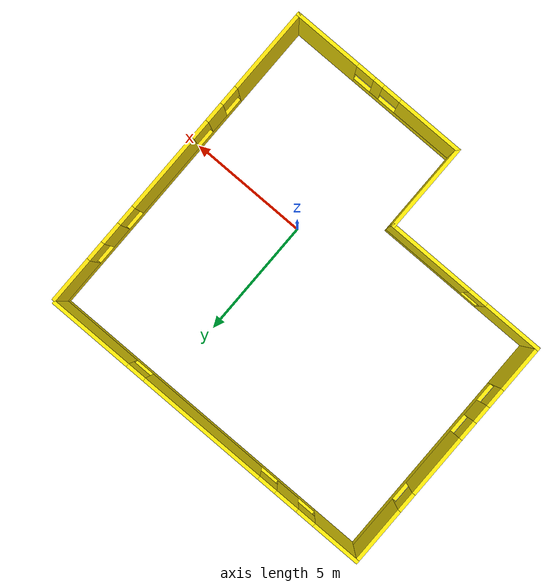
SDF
<?xml version='1.0'?>
<sdf version='1.7'>
  <model name='room'>
    <pose>-2.30056 1.0056 0 0 -0 0</pose>
    <link name='Wall_14'>
      <pose>3.425 -6.85 0 0 -0 3.14159</pose>
      <visual name='Wall_14_Visual_0'>
        <pose>-2.42261 0 1.25 0 -0 0</pose>
        <geometry>
          <box>
            <size>2.90478 0.15 2.5</size>
          </box>
        </geometry>
        <material>
          <script>
            <uri>file://media/materials/scripts/gazebo.material</uri>
            <name>Gazebo/Grey</name>
          </script>
          <ambient>1 0.917647 0.027451 1</ambient>
        </material>
        <meta>
          <layer>0</layer>
        </meta>
      </visual>
      <collision name='Wall_14_Collision_0'>
        <geometry>
          <box>
            <size>2.90478 0.15 2.5</size>
          </box>
        </geometry>
        <pose>-2.42261 0 1.25 0 -0 0</pose>
      </collision>
      <visual name='Wall_14_Visual_1'>
        <pose>1.45239 0 0.25 0 -0 0</pose>
        <geometry>
          <box>
            <size>4.84522 0.15 0.5</size>
          </box>
        </geometry>
        <material>
          <script>
            <uri>file://media/materials/scripts/gazebo.material</uri>
            <name>Gazebo/Grey</name>
          </script>
          <ambient>1 0.917647 0.027451 1</ambient>
        </material>
        <meta>
          <layer>0</layer>
        </meta>
      </visual>
      <collision name='Wall_14_Collision_1'>
        <geometry>
          <box>
            <size>4.84522 0.15 0.5</size>
          </box>
        </geometry>
        <pose>1.45239 0 0.25 0 -0 0</pose>
      </collision>
      <visual name='Wall_14_Visual_2'>
        <pose>0.038129 0 1.5 0 -0 0</pose>
        <geometry>
          <box>
            <size>0.4167 0.15 2</size>
          </box>
        </geometry>
        <material>
          <script>
            <uri>file://media/materials/scripts/gazebo.material</uri>
            <name>Gazebo/Grey</name>
          </script>
          <ambient>1 0.917647 0.027451 1</ambient>
        </material>
        <meta>
          <layer>0</layer>
        </meta>
      </visual>
      <collision name='Wall_14_Collision_2'>
        <geometry>
          <box>
            <size>0.4167 0.15 2</size>
          </box>
        </geometry>
        <pose>0.038129 0 1.5 0 -0 0</pose>
      </collision>
      <visual name='Wall_14_Visual_3'>
        <pose>2.46074 0 1.5 0 -0 0</pose>
        <geometry>
          <box>
            <size>2.82852 0.15 2</size>
          </box>
        </geometry>
        <material>
          <script>
            <uri>file://media/materials/scripts/gazebo.material</uri>
            <name>Gazebo/Grey</name>
          </script>
          <ambient>1 0.917647 0.027451 1</ambient>
        </material>
        <meta>
          <layer>0</layer>
        </meta>
      </visual>
      <collision name='Wall_14_Collision_3'>
        <geometry>
          <box>
            <size>2.82852 0.15 2</size>
          </box>
        </geometry>
        <pose>2.46074 0 1.5 0 -0 0</pose>
      </collision>
      <visual name='Wall_14_Visual_4'>
        <pose>-0.570221 0 1.9 0 -0 0</pose>
        <geometry>
          <box>
            <size>0.8 0.15 1.2</size>
          </box>
        </geometry>
        <material>
          <script>
            <uri>file://media/materials/scripts/gazebo.material</uri>
            <name>Gazebo/Grey</name>
          </script>
          <ambient>1 0.917647 0.027451 1</ambient>
        </material>
        <meta>
          <layer>0</layer>
        </meta>
      </visual>
      <collision name='Wall_14_Collision_4'>
        <geometry>
          <box>
            <size>0.8 0.15 1.2</size>
          </box>
        </geometry>
        <pose>-0.570221 0 1.9 0 -0 0</pose>
      </collision>
      <visual name='Wall_14_Visual_5'>
        <pose>0.646479 0 1.9 0 -0 0</pose>
        <geometry>
          <box>
            <size>0.8 0.15 1.2</size>
          </box>
        </geometry>
        <material>
          <script>
            <uri>file://media/materials/scripts/gazebo.material</uri>
            <name>Gazebo/Grey</name>
          </script>
          <ambient>1 0.917647 0.027451 1</ambient>
        </material>
        <meta>
          <layer>0</layer>
        </meta>
      </visual>
      <collision name='Wall_14_Collision_5'>
        <geometry>
          <box>
            <size>0.8 0.15 1.2</size>
          </box>
        </geometry>
        <pose>0.646479 0 1.9 0 -0 0</pose>
      </collision>
    </link>
    <link name='Wall_15'>
      <collision name='Wall_15_Collision'>
        <geometry>
          <box>
            <size>3.75 0.15 2.5</size>
          </box>
        </geometry>
        <pose>0 0 1.25 0 -0 0</pose>
      </collision>
      <visual name='Wall_15_Visual'>
        <pose>0 0 1.25 0 -0 0</pose>
        <geometry>
          <box>
            <size>3.75 0.15 2.5</size>
          </box>
        </geometry>
        <material>
          <script>
            <uri>file://media/materials/scripts/gazebo.material</uri>
            <name>Gazebo/Grey</name>
          </script>
          <ambient>1 0.917647 0.027451 1</ambient>
        </material>
        <meta>
          <layer>0</layer>
        </meta>
      </visual>
      <pose>-0.375 -5.05 0 0 -0 1.5708</pose>
    </link>
    <link name='Wall_17'>
      <pose>-7.225 1.8 0 0 -0 1.5708</pose>
      <visual name='Wall_17_Visual_0'>
        <pose>-4.10475 0 1.25 0 -0 0</pose>
        <geometry>
          <box>
            <size>2.04049 0.15 2.5</size>
          </box>
        </geometry>
        <material>
          <script>
            <uri>file://media/materials/scripts/gazebo.material</uri>
            <name>Gazebo/Grey</name>
          </script>
          <ambient>1 0.917647 0.027451 1</ambient>
        </material>
        <meta>
          <layer>0</layer>
        </meta>
      </visual>
      <collision name='Wall_17_Collision_0'>
        <geometry>
          <box>
            <size>2.04049 0.15 2.5</size>
          </box>
        </geometry>
        <pose>-4.10475 0 1.25 0 -0 0</pose>
      </collision>
      <visual name='Wall_17_Visual_1'>
        <pose>1.02025 0 0.25 0 -0 0</pose>
        <geometry>
          <box>
            <size>8.20951 0.15 0.5</size>
          </box>
        </geometry>
        <material>
          <script>
            <uri>file://media/materials/scripts/gazebo.material</uri>
            <name>Gazebo/Grey</name>
          </script>
          <ambient>1 0.917647 0.027451 1</ambient>
        </material>
        <meta>
          <layer>0</layer>
        </meta>
      </visual>
      <collision name='Wall_17_Collision_1'>
        <geometry>
          <box>
            <size>8.20951 0.15 0.5</size>
          </box>
        </geometry>
        <pose>1.02025 0 0.25 0 -0 0</pose>
      </collision>
      <visual name='Wall_17_Visual_2'>
        <pose>-1.91393 0 1.5 0 -0 0</pose>
        <geometry>
          <box>
            <size>0.741153 0.15 2</size>
          </box>
        </geometry>
        <material>
          <script>
            <uri>file://media/materials/scripts/gazebo.material</uri>
            <name>Gazebo/Grey</name>
          </script>
          <ambient>1 0.917647 0.027451 1</ambient>
        </material>
        <meta>
          <layer>0</layer>
        </meta>
      </visual>
      <collision name='Wall_17_Collision_2'>
        <geometry>
          <box>
            <size>0.741153 0.15 2</size>
          </box>
        </geometry>
        <pose>-1.91393 0 1.5 0 -0 0</pose>
      </collision>
      <visual name='Wall_17_Visual_3'>
        <pose>0.560023 0 1.5 0 -0 0</pose>
        <geometry>
          <box>
            <size>2.60676 0.15 2</size>
          </box>
        </geometry>
        <material>
          <script>
            <uri>file://media/materials/scripts/gazebo.material</uri>
            <name>Gazebo/Grey</name>
          </script>
          <ambient>1 0.917647 0.027451 1</ambient>
        </material>
        <meta>
          <layer>0</layer>
        </meta>
      </visual>
      <collision name='Wall_17_Collision_3'>
        <geometry>
          <box>
            <size>2.60676 0.15 2</size>
          </box>
        </geometry>
        <pose>0.560023 0 1.5 0 -0 0</pose>
      </collision>
      <visual name='Wall_17_Visual_4'>
        <pose>3.8942 0 1.5 0 -0 0</pose>
        <geometry>
          <box>
            <size>2.4616 0.15 2</size>
          </box>
        </geometry>
        <material>
          <script>
            <uri>file://media/materials/scripts/gazebo.material</uri>
            <name>Gazebo/Grey</name>
          </script>
          <ambient>1 0.917647 0.027451 1</ambient>
        </material>
        <meta>
          <layer>0</layer>
        </meta>
      </visual>
      <collision name='Wall_17_Collision_4'>
        <geometry>
          <box>
            <size>2.4616 0.15 2</size>
          </box>
        </geometry>
        <pose>3.8942 0 1.5 0 -0 0</pose>
      </collision>
      <visual name='Wall_17_Visual_5'>
        <pose>-2.68451 0 1.9 0 -0 0</pose>
        <geometry>
          <box>
            <size>0.8 0.15 1.2</size>
          </box>
        </geometry>
        <material>
          <script>
            <uri>file://media/materials/scripts/gazebo.material</uri>
            <name>Gazebo/Grey</name>
          </script>
          <ambient>1 0.917647 0.027451 1</ambient>
        </material>
        <meta>
          <layer>0</layer>
        </meta>
      </visual>
      <collision name='Wall_17_Collision_5'>
        <geometry>
          <box>
            <size>0.8 0.15 1.2</size>
          </box>
        </geometry>
        <pose>-2.68451 0 1.9 0 -0 0</pose>
      </collision>
      <visual name='Wall_17_Visual_6'>
        <pose>-1.14336 0 1.9 0 -0 0</pose>
        <geometry>
          <box>
            <size>0.8 0.15 1.2</size>
          </box>
        </geometry>
        <material>
          <script>
            <uri>file://media/materials/scripts/gazebo.material</uri>
            <name>Gazebo/Grey</name>
          </script>
          <ambient>1 0.917647 0.027451 1</ambient>
        </material>
        <meta>
          <layer>0</layer>
        </meta>
      </visual>
      <collision name='Wall_17_Collision_6'>
        <geometry>
          <box>
            <size>0.8 0.15 1.2</size>
          </box>
        </geometry>
        <pose>-1.14336 0 1.9 0 -0 0</pose>
      </collision>
      <visual name='Wall_17_Visual_7'>
        <pose>2.2634 0 1.9 0 -0 0</pose>
        <geometry>
          <box>
            <size>0.8 0.15 1.2</size>
          </box>
        </geometry>
        <material>
          <script>
            <uri>file://media/materials/scripts/gazebo.material</uri>
            <name>Gazebo/Grey</name>
          </script>
          <ambient>1 0.917647 0.027451 1</ambient>
        </material>
        <meta>
          <layer>0</layer>
        </meta>
      </visual>
      <collision name='Wall_17_Collision_7'>
        <geometry>
          <box>
            <size>0.8 0.15 1.2</size>
          </box>
        </geometry>
        <pose>2.2634 0 1.9 0 -0 0</pose>
      </collision>
    </link>
    <link name='Wall_19'>
      <pose>-0.05 6.85 0 0 -0 0</pose>
      <visual name='Wall_19_Visual_0'>
        <pose>-6.20279 0 1.25 0 -0 0</pose>
        <geometry>
          <box>
            <size>2.09442 0.15 2.5</size>
          </box>
        </geometry>
        <material>
          <script>
            <uri>file://media/materials/scripts/gazebo.material</uri>
            <name>Gazebo/Grey</name>
          </script>
          <ambient>1 0.917647 0.027451 1</ambient>
        </material>
        <meta>
          <layer>0</layer>
        </meta>
      </visual>
      <collision name='Wall_19_Collision_0'>
        <geometry>
          <box>
            <size>2.09442 0.15 2.5</size>
          </box>
        </geometry>
        <pose>-6.20279 0 1.25 0 -0 0</pose>
      </collision>
      <visual name='Wall_19_Visual_1'>
        <pose>1.04721 0 0.25 0 -0 0</pose>
        <geometry>
          <box>
            <size>12.4056 0.15 0.5</size>
          </box>
        </geometry>
        <material>
          <script>
            <uri>file://media/materials/scripts/gazebo.material</uri>
            <name>Gazebo/Grey</name>
          </script>
          <ambient>1 0.917647 0.027451 1</ambient>
        </material>
        <meta>
          <layer>0</layer>
        </meta>
      </visual>
      <collision name='Wall_19_Collision_1'>
        <geometry>
          <box>
            <size>12.4056 0.15 0.5</size>
          </box>
        </geometry>
        <pose>1.04721 0 0.25 0 -0 0</pose>
      </collision>
      <visual name='Wall_19_Visual_2'>
        <pose>-3.84305 0 1.5 0 -0 0</pose>
        <geometry>
          <box>
            <size>1.02505 0.15 2</size>
          </box>
        </geometry>
        <material>
          <script>
            <uri>file://media/materials/scripts/gazebo.material</uri>
            <name>Gazebo/Grey</name>
          </script>
          <ambient>1 0.917647 0.027451 1</ambient>
        </material>
        <meta>
          <layer>0</layer>
        </meta>
      </visual>
      <collision name='Wall_19_Collision_2'>
        <geometry>
          <box>
            <size>1.02505 0.15 2</size>
          </box>
        </geometry>
        <pose>-3.84305 0 1.5 0 -0 0</pose>
      </collision>
      <visual name='Wall_19_Visual_3'>
        <pose>0.192337 0 1.5 0 -0 0</pose>
        <geometry>
          <box>
            <size>5.44573 0.15 2</size>
          </box>
        </geometry>
        <material>
          <script>
            <uri>file://media/materials/scripts/gazebo.material</uri>
            <name>Gazebo/Grey</name>
          </script>
          <ambient>1 0.917647 0.027451 1</ambient>
        </material>
        <meta>
          <layer>0</layer>
        </meta>
      </visual>
      <collision name='Wall_19_Collision_3'>
        <geometry>
          <box>
            <size>5.44573 0.15 2</size>
          </box>
        </geometry>
        <pose>0.192337 0 1.5 0 -0 0</pose>
      </collision>
      <visual name='Wall_19_Visual_4'>
        <pose>5.4826 0 1.5 0 -0 0</pose>
        <geometry>
          <box>
            <size>3.5348 0.15 2</size>
          </box>
        </geometry>
        <material>
          <script>
            <uri>file://media/materials/scripts/gazebo.material</uri>
            <name>Gazebo/Grey</name>
          </script>
          <ambient>1 0.917647 0.027451 1</ambient>
        </material>
        <meta>
          <layer>0</layer>
        </meta>
      </visual>
      <collision name='Wall_19_Collision_4'>
        <geometry>
          <box>
            <size>3.5348 0.15 2</size>
          </box>
        </geometry>
        <pose>5.4826 0 1.5 0 -0 0</pose>
      </collision>
      <visual name='Wall_19_Visual_5'>
        <pose>-4.75558 0 1.9 0 -0 0</pose>
        <geometry>
          <box>
            <size>0.8 0.15 1.2</size>
          </box>
        </geometry>
        <material>
          <script>
            <uri>file://media/materials/scripts/gazebo.material</uri>
            <name>Gazebo/Grey</name>
          </script>
          <ambient>1 0.917647 0.027451 1</ambient>
        </material>
        <meta>
          <layer>0</layer>
        </meta>
      </visual>
      <collision name='Wall_19_Collision_5'>
        <geometry>
          <box>
            <size>0.8 0.15 1.2</size>
          </box>
        </geometry>
        <pose>-4.75558 0 1.9 0 -0 0</pose>
      </collision>
      <visual name='Wall_19_Visual_6'>
        <pose>-2.93053 0 1.9 0 -0 0</pose>
        <geometry>
          <box>
            <size>0.8 0.15 1.2</size>
          </box>
        </geometry>
        <material>
          <script>
            <uri>file://media/materials/scripts/gazebo.material</uri>
            <name>Gazebo/Grey</name>
          </script>
          <ambient>1 0.917647 0.027451 1</ambient>
        </material>
        <meta>
          <layer>0</layer>
        </meta>
      </visual>
      <collision name='Wall_19_Collision_6'>
        <geometry>
          <box>
            <size>0.8 0.15 1.2</size>
          </box>
        </geometry>
        <pose>-2.93053 0 1.9 0 -0 0</pose>
      </collision>
      <visual name='Wall_19_Visual_7'>
        <pose>3.3152 0 1.9 0 -0 0</pose>
        <geometry>
          <box>
            <size>0.8 0.15 1.2</size>
          </box>
        </geometry>
        <material>
          <script>
            <uri>file://media/materials/scripts/gazebo.material</uri>
            <name>Gazebo/Grey</name>
          </script>
          <ambient>1 0.917647 0.027451 1</ambient>
        </material>
        <meta>
          <layer>0</layer>
        </meta>
      </visual>
      <collision name='Wall_19_Collision_7'>
        <geometry>
          <box>
            <size>0.8 0.15 1.2</size>
          </box>
        </geometry>
        <pose>3.3152 0 1.9 0 -0 0</pose>
      </collision>
    </link>
    <link name='Wall_23'>
      <pose>7.225 -0.049999 0 0 -0 1.5708</pose>
      <visual name='Wall_23_Visual_0'>
        <pose>-5.08895 0 1.25 0 -0 0</pose>
        <geometry>
          <box>
            <size>3.5721 0.15 2.5</size>
          </box>
        </geometry>
        <material>
          <script>
            <uri>file://media/materials/scripts/gazebo.material</uri>
            <name>Gazebo/Grey</name>
          </script>
          <ambient>1 0.886275 0.0313726 1</ambient>
        </material>
        <meta>
          <layer>0</layer>
        </meta>
      </visual>
      <collision name='Wall_23_Collision_0'>
        <geometry>
          <box>
            <size>3.5721 0.15 2.5</size>
          </box>
        </geometry>
        <pose>-5.08895 0 1.25 0 -0 0</pose>
      </collision>
      <visual name='Wall_23_Visual_1'>
        <pose>1.78605 0 0.25 0 -0 0</pose>
        <geometry>
          <box>
            <size>10.1779 0.15 0.5</size>
          </box>
        </geometry>
        <material>
          <script>
            <uri>file://media/materials/scripts/gazebo.material</uri>
            <name>Gazebo/Grey</name>
          </script>
          <ambient>1 0.886275 0.0313726 1</ambient>
        </material>
        <meta>
          <layer>0</layer>
        </meta>
      </visual>
      <collision name='Wall_23_Collision_1'>
        <geometry>
          <box>
            <size>10.1779 0.15 0.5</size>
          </box>
        </geometry>
        <pose>1.78605 0 0.25 0 -0 0</pose>
      </collision>
      <visual name='Wall_23_Visual_2'>
        <pose>-2.09177 0 1.5 0 -0 0</pose>
        <geometry>
          <box>
            <size>0.822267 0.15 2</size>
          </box>
        </geometry>
        <material>
          <script>
            <uri>file://media/materials/scripts/gazebo.material</uri>
            <name>Gazebo/Grey</name>
          </script>
          <ambient>1 0.886275 0.0313726 1</ambient>
        </material>
        <meta>
          <layer>0</layer>
        </meta>
      </visual>
      <collision name='Wall_23_Collision_2'>
        <geometry>
          <box>
            <size>0.822267 0.15 2</size>
          </box>
        </geometry>
        <pose>-2.09177 0 1.5 0 -0 0</pose>
      </collision>
      <visual name='Wall_23_Visual_3'>
        <pose>0.767478 0 1.5 0 -0 0</pose>
        <geometry>
          <box>
            <size>3.29622 0.15 2</size>
          </box>
        </geometry>
        <material>
          <script>
            <uri>file://media/materials/scripts/gazebo.material</uri>
            <name>Gazebo/Grey</name>
          </script>
          <ambient>1 0.886275 0.0313726 1</ambient>
        </material>
        <meta>
          <layer>0</layer>
        </meta>
      </visual>
      <collision name='Wall_23_Collision_3'>
        <geometry>
          <box>
            <size>3.29622 0.15 2</size>
          </box>
        </geometry>
        <pose>0.767478 0 1.5 0 -0 0</pose>
      </collision>
      <visual name='Wall_23_Visual_4'>
        <pose>3.66728 0 1.5 0 -0 0</pose>
        <geometry>
          <box>
            <size>0.90338 0.15 2</size>
          </box>
        </geometry>
        <material>
          <script>
            <uri>file://media/materials/scripts/gazebo.material</uri>
            <name>Gazebo/Grey</name>
          </script>
          <ambient>1 0.886275 0.0313726 1</ambient>
        </material>
        <meta>
          <layer>0</layer>
        </meta>
      </visual>
      <collision name='Wall_23_Collision_4'>
        <geometry>
          <box>
            <size>0.90338 0.15 2</size>
          </box>
        </geometry>
        <pose>3.66728 0 1.5 0 -0 0</pose>
      </collision>
      <visual name='Wall_23_Visual_5'>
        <pose>5.89698 0 1.5 0 -0 0</pose>
        <geometry>
          <box>
            <size>1.95603 0.15 2</size>
          </box>
        </geometry>
        <material>
          <script>
            <uri>file://media/materials/scripts/gazebo.material</uri>
            <name>Gazebo/Grey</name>
          </script>
          <ambient>1 0.886275 0.0313726 1</ambient>
        </material>
        <meta>
          <layer>0</layer>
        </meta>
      </visual>
      <collision name='Wall_23_Collision_5'>
        <geometry>
          <box>
            <size>1.95603 0.15 2</size>
          </box>
        </geometry>
        <pose>5.89698 0 1.5 0 -0 0</pose>
      </collision>
      <visual name='Wall_23_Visual_6'>
        <pose>-2.9029 0 1.9 0 -0 0</pose>
        <geometry>
          <box>
            <size>0.8 0.15 1.2</size>
          </box>
        </geometry>
        <material>
          <script>
            <uri>file://media/materials/scripts/gazebo.material</uri>
            <name>Gazebo/Grey</name>
          </script>
          <ambient>1 0.886275 0.0313726 1</ambient>
        </material>
        <meta>
          <layer>0</layer>
        </meta>
      </visual>
      <collision name='Wall_23_Collision_6'>
        <geometry>
          <box>
            <size>0.8 0.15 1.2</size>
          </box>
        </geometry>
        <pose>-2.9029 0 1.9 0 -0 0</pose>
      </collision>
      <visual name='Wall_23_Visual_7'>
        <pose>-1.28063 0 1.9 0 -0 0</pose>
        <geometry>
          <box>
            <size>0.8 0.15 1.2</size>
          </box>
        </geometry>
        <material>
          <script>
            <uri>file://media/materials/scripts/gazebo.material</uri>
            <name>Gazebo/Grey</name>
          </script>
          <ambient>1 0.886275 0.0313726 1</ambient>
        </material>
        <meta>
          <layer>0</layer>
        </meta>
      </visual>
      <collision name='Wall_23_Collision_7'>
        <geometry>
          <box>
            <size>0.8 0.15 1.2</size>
          </box>
        </geometry>
        <pose>-1.28063 0 1.9 0 -0 0</pose>
      </collision>
      <visual name='Wall_23_Visual_8'>
        <pose>2.81559 0 1.9 0 -0 0</pose>
        <geometry>
          <box>
            <size>0.8 0.15 1.2</size>
          </box>
        </geometry>
        <material>
          <script>
            <uri>file://media/materials/scripts/gazebo.material</uri>
            <name>Gazebo/Grey</name>
          </script>
          <ambient>1 0.886275 0.0313726 1</ambient>
        </material>
        <meta>
          <layer>0</layer>
        </meta>
      </visual>
      <collision name='Wall_23_Collision_8'>
        <geometry>
          <box>
            <size>0.8 0.15 1.2</size>
          </box>
        </geometry>
        <pose>2.81559 0 1.9 0 -0 0</pose>
      </collision>
      <visual name='Wall_23_Visual_9'>
        <pose>4.51897 0 1.9 0 -0 0</pose>
        <geometry>
          <box>
            <size>0.8 0.15 1.2</size>
          </box>
        </geometry>
        <material>
          <script>
            <uri>file://media/materials/scripts/gazebo.material</uri>
            <name>Gazebo/Grey</name>
          </script>
          <ambient>1 0.886275 0.0313726 1</ambient>
        </material>
        <meta>
          <layer>0</layer>
        </meta>
      </visual>
      <collision name='Wall_23_Collision_9'>
        <geometry>
          <box>
            <size>0.8 0.15 1.2</size>
          </box>
        </geometry>
        <pose>4.51897 0 1.9 0 -0 0</pose>
      </collision>
    </link>
    <link name='Wall_27'>
      <pose>-3.8 -3.25 0 0 -0 0</pose>
      <visual name='Wall_27_Visual_0'>
        <pose>-2.25 0 1.25 0 -0 0</pose>
        <geometry>
          <box>
            <size>2.49999 0.15 2.5</size>
          </box>
        </geometry>
        <material>
          <script>
            <uri>file://media/materials/scripts/gazebo.material</uri>
            <name>Gazebo/Grey</name>
          </script>
          <ambient>1 0.921569 0.0431373 1</ambient>
        </material>
        <meta>
          <layer>0</layer>
        </meta>
      </visual>
      <collision name='Wall_27_Collision_0'>
        <geometry>
          <box>
            <size>2.49999 0.15 2.5</size>
          </box>
        </geometry>
        <pose>-2.25 0 1.25 0 -0 0</pose>
      </collision>
      <visual name='Wall_27_Visual_1'>
        <pose>1.25 0 0.25 0 -0 0</pose>
        <geometry>
          <box>
            <size>4.50001 0.15 0.5</size>
          </box>
        </geometry>
        <material>
          <script>
            <uri>file://media/materials/scripts/gazebo.material</uri>
            <name>Gazebo/Grey</name>
          </script>
          <ambient>1 0.921569 0.0431373 1</ambient>
        </material>
        <meta>
          <layer>0</layer>
        </meta>
      </visual>
      <collision name='Wall_27_Collision_1'>
        <geometry>
          <box>
            <size>4.50001 0.15 0.5</size>
          </box>
        </geometry>
        <pose>1.25 0 0.25 0 -0 0</pose>
      </collision>
      <visual name='Wall_27_Visual_2'>
        <pose>1.65 0 1.5 0 -0 0</pose>
        <geometry>
          <box>
            <size>3.70001 0.15 2</size>
          </box>
        </geometry>
        <material>
          <script>
            <uri>file://media/materials/scripts/gazebo.material</uri>
            <name>Gazebo/Grey</name>
          </script>
          <ambient>1 0.921569 0.0431373 1</ambient>
        </material>
        <meta>
          <layer>0</layer>
        </meta>
      </visual>
      <collision name='Wall_27_Collision_2'>
        <geometry>
          <box>
            <size>3.70001 0.15 2</size>
          </box>
        </geometry>
        <pose>1.65 0 1.5 0 -0 0</pose>
      </collision>
      <visual name='Wall_27_Visual_3'>
        <pose>-0.600009 0 1.9 0 -0 0</pose>
        <geometry>
          <box>
            <size>0.8 0.15 1.2</size>
          </box>
        </geometry>
        <material>
          <script>
            <uri>file://media/materials/scripts/gazebo.material</uri>
            <name>Gazebo/Grey</name>
          </script>
          <ambient>1 0.921569 0.0431373 1</ambient>
        </material>
        <meta>
          <layer>0</layer>
        </meta>
      </visual>
      <collision name='Wall_27_Collision_3'>
        <geometry>
          <box>
            <size>0.8 0.15 1.2</size>
          </box>
        </geometry>
        <pose>-0.600009 0 1.9 0 -0 0</pose>
      </collision>
    </link>
    <static>1</static>
  </model>
</sdf>
